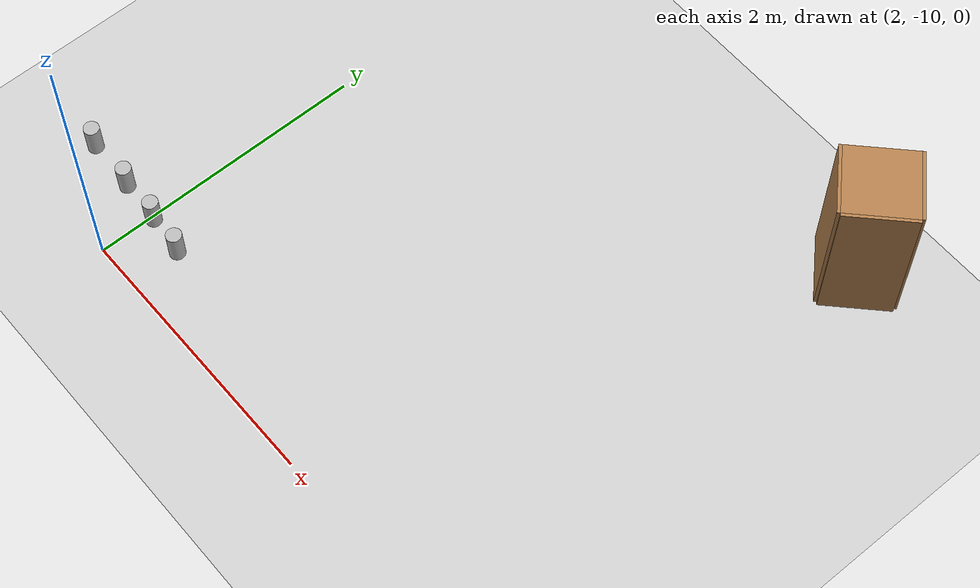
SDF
<sdf version="1.7">
 <world name="default">
  <model name="cabinet">
   <static>1</static>
   <link name="cabinet_bottom_plate">
    <inertial>
     <pose>0 0 -1 0 -0 0</pose>
     <inertia><ixx>2.05</ixx><ixy>0</ixy><ixz>0</ixz><iyy>2.05</iyy><iyz>0</iyz><izz>2.05</izz></inertia>
     <mass>25</mass>
    </inertial>
    <collision name="cabinet_bottom_plate_geom">
     <pose>0 0 0.01 0 -0 0</pose>
     <geometry><box><size>0.45 0.45 0.02</size></box></geometry>
    </collision>
    <visual name="cabinet_bottom_plate_geom_visual">
     <pose>0 0 0.01 0 -0 0</pose>
     <geometry><box><size>0.45 0.45 0.02</size></box></geometry>
     <material>
      <script><uri>file://media/materials/scripts/gazebo.material</uri><name>Gazebo/Wood</name></script>
     </material>
    </visual>
    <collision name="cabinet_bottom_plate_geom_cabinet_back_plate">
     <pose>0.235 0 0.51 0 -0 0</pose>
     <geometry><box><size>0.02 0.45 1.02</size></box></geometry>
    </collision>
    <visual name="cabinet_bottom_plate_geom_cabinet_back_plate_visual">
     <pose>0.235 0 0.51 0 -0 0</pose>
     <geometry><box><size>0.02 0.45 1.02</size></box></geometry>
     <material>
      <script><uri>file://media/materials/scripts/gazebo.material</uri><name>Gazebo/Wood</name></script>
     </material>
    </visual>
    <collision name="cabinet_bottom_plate_geom_cabinet_left_plate">
     <pose>0 0.235 0.51 0 -0 0</pose>
     <geometry><box><size>0.45 0.02 1.02</size></box></geometry>
    </collision>
    <visual name="cabinet_bottom_plate_geom_cabinet_left_plate_visual">
     <pose>0 0.235 0.51 0 -0 0</pose>
     <geometry><box><size>0.45 0.02 1.02</size></box></geometry>
     <material>
      <script><uri>file://media/materials/scripts/gazebo.material</uri><name>Gazebo/Wood</name></script>
     </material>
    </visual>
    <collision name="cabinet_bottom_plate_geom_cabinet_middle_plate">
     <pose>0 0 0.51 0 -0 0</pose>
     <geometry><box><size>0.45 0.45 0.02</size></box></geometry>
    </collision>
    <visual name="cabinet_bottom_plate_geom_cabinet_middle_plate_visual">
     <pose>0 0 0.51 0 -0 0</pose>
     <geometry><box><size>0.45 0.45 0.02</size></box></geometry>
     <material>
      <script><uri>file://media/materials/scripts/gazebo.material</uri><name>Gazebo/Wood</name></script>
     </material>
    </visual>
    <collision name="cabinet_bottom_plate_geom_cabinet_right_plate">
     <pose>0 -0.235 0.51 0 -0 0</pose>
     <geometry><box><size>0.45 0.02 1.02</size></box></geometry>
    </collision>
    <visual name="cabinet_bottom_plate_geom_cabinet_right_plate_visual">
     <pose>0 -0.235 0.51 0 -0 0</pose>
     <geometry><box><size>0.45 0.02 1.02</size></box></geometry>
     <material>
      <script><uri>file://media/materials/scripts/gazebo.material</uri><name>Gazebo/Wood</name></script>
     </material>
    </visual>
    <collision name="cabinet_bottom_plate_geom_cabinet_top_plate">
     <pose>0 0 1.01 0 -0 0</pose>
     <geometry><box><size>0.45 0.45 0.02</size></box></geometry>
    </collision>
    <visual name="cabinet_bottom_plate_geom_cabinet_top_plate_visual">
     <pose>0 0 1.01 0 -0 0</pose>
     <geometry><box><size>0.45 0.45 0.02</size></box></geometry>
     <material>
      <script><uri>file://media/materials/scripts/gazebo.material</uri><name>Gazebo/Wood</name></script>
     </material>
    </visual>
   </link>
   <pose>5.5953 -6.89266 1.02917 0 0 -0.801525</pose>
  </model>
  <model name="ground_plane">
   <static>1</static>
   <link name="link">
    <collision name="collision">
     <geometry><plane><normal>0 0 1</normal><size>100 100</size></plane></geometry>
     <surface>
      <contact><collide_bitmask>65535</collide_bitmask></contact>
      <friction><ode><mu>100</mu><mu2>50</mu2></ode></friction>
     </surface>
    </collision>
    <visual name="visual">
     <cast_shadows>0</cast_shadows>
     <geometry><plane><normal>0 0 1</normal><size>100 100</size></plane></geometry>
     <material>
      <script><uri>file://media/materials/scripts/gazebo.material</uri><name>Gazebo/Grey</name></script>
     </material>
    </visual>
   </link>
  </model>
  <model name="beer_clone_53">
   <link name="link">
    <pose>0 0 0.115 0 -0 0</pose>
    <inertial>
     <mass>0.39</mass>
     <inertia><ixx>0.00058</ixx><ixy>0</ixy><ixz>0</ixz><iyy>0.00058</iyy><iyz>0</iyz><izz>0.00019</izz></inertia>
    </inertial>
    <collision name="collision">
     <geometry><cylinder><radius>0.055</radius><length>0.23</length></cylinder></geometry>
    </collision>
    <visual name="visual">
     <geometry><cylinder><radius>0.055</radius><length>0.23</length></cylinder></geometry>
     <material>
      <script>
       <uri>model://beer/materials/scripts</uri>
       <uri>model://beer/materials/textures</uri>
       <name>Beer/Diffuse</name>
      </script>
     </material>
    </visual>
   </link>
   <pose>1.31811 -9.57035 0 0 -0 0</pose>
  </model>
  <model name="beer_clone_54">
   <link name="link">
    <pose>0 0 0.115 0 -0 0</pose>
    <inertial>
     <mass>0.39</mass>
     <inertia><ixx>0.00058</ixx><ixy>0</ixy><ixz>0</ixz><iyy>0.00058</iyy><iyz>0</iyz><izz>0.00019</izz></inertia>
    </inertial>
    <collision name="collision">
     <geometry><cylinder><radius>0.055</radius><length>0.23</length></cylinder></geometry>
    </collision>
    <visual name="visual">
     <geometry><cylinder><radius>0.055</radius><length>0.23</length></cylinder></geometry>
     <material>
      <script>
       <uri>model://beer/materials/scripts</uri>
       <uri>model://beer/materials/textures</uri>
       <name>Beer/Diffuse</name>
      </script>
     </material>
    </visual>
   </link>
   <pose>1.70632 -9.59089 0 0 -0 0</pose>
  </model>
  <model name="beer_clone_55">
   <link name="link">
    <pose>0 0 0.115 0 -0 0</pose>
    <inertial>
     <mass>0.39</mass>
     <inertia><ixx>0.00058</ixx><ixy>0</ixy><ixz>0</ixz><iyy>0.00058</iyy><iyz>0</iyz><izz>0.00019</izz></inertia>
    </inertial>
    <collision name="collision">
     <geometry><cylinder><radius>0.055</radius><length>0.23</length></cylinder></geometry>
    </collision>
    <visual name="visual">
     <geometry><cylinder><radius>0.055</radius><length>0.23</length></cylinder></geometry>
     <material>
      <script>
       <uri>model://beer/materials/scripts</uri>
       <uri>model://beer/materials/textures</uri>
       <name>Beer/Diffuse</name>
      </script>
     </material>
    </visual>
   </link>
   <pose>2.03007 -9.6096 0 0 -0 0</pose>
  </model>
  <model name="beer_clone_56">
   <link name="link">
    <pose>0 0 0.115 0 -0 0</pose>
    <inertial>
     <mass>0.39</mass>
     <inertia><ixx>0.00058</ixx><ixy>0</ixy><ixz>0</ixz><iyy>0.00058</iyy><iyz>0</iyz><izz>0.00019</izz></inertia>
    </inertial>
    <collision name="collision">
     <geometry><cylinder><radius>0.055</radius><length>0.23</length></cylinder></geometry>
    </collision>
    <visual name="visual">
     <geometry><cylinder><radius>0.055</radius><length>0.23</length></cylinder></geometry>
     <material>
      <script>
       <uri>model://beer/materials/scripts</uri>
       <uri>model://beer/materials/textures</uri>
       <name>Beer/Diffuse</name>
      </script>
     </material>
    </visual>
   </link>
   <pose>2.32994 -9.63857 0 0 -0 0</pose>
  </model>
 </world>
</sdf>
